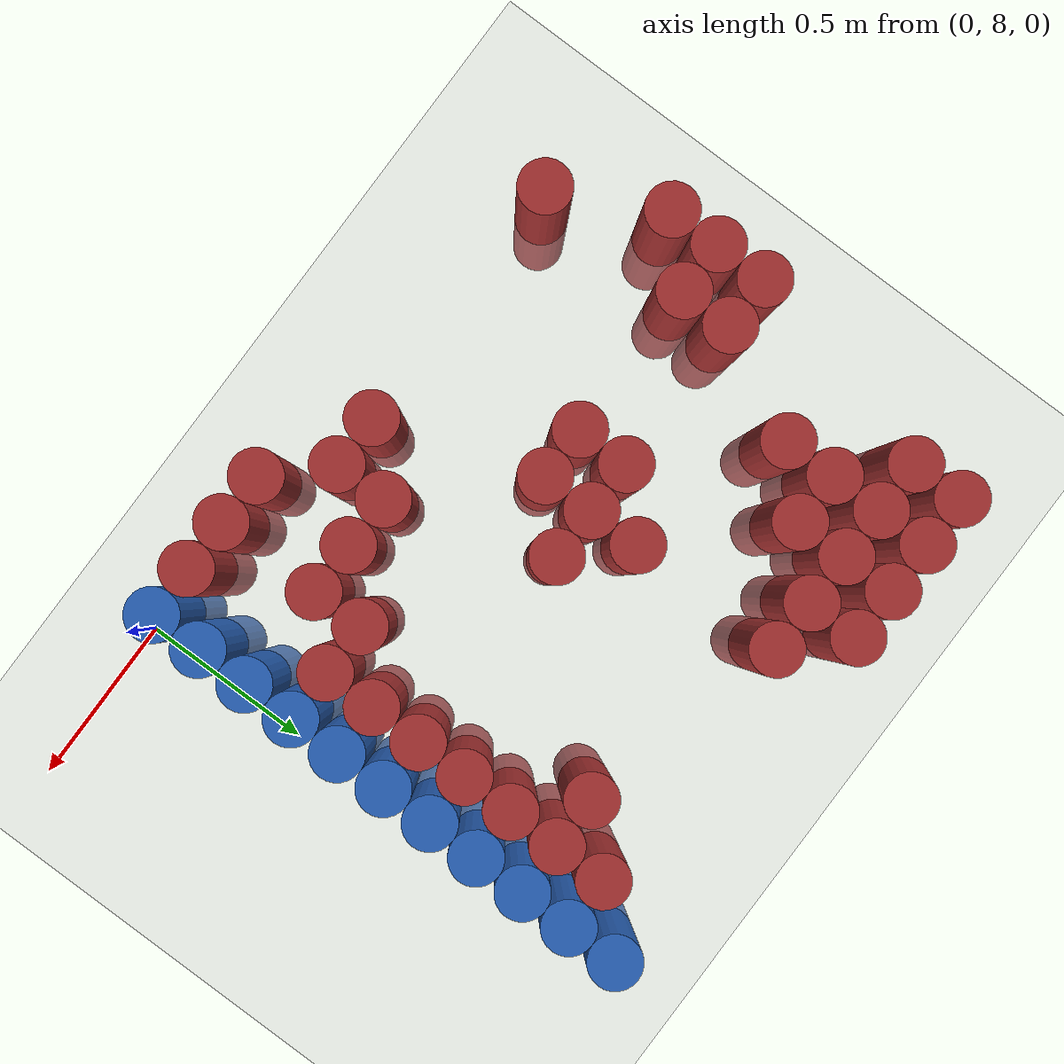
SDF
<sdf version="1.6">
 <world name="default">
  <model name="ground_plane">
   <static>1</static>
   <link name="link">
    <collision name="collision">
     <geometry><plane><normal>0 0 1</normal><size>100 100</size></plane></geometry>
     <surface><friction><ode><mu>100</mu><mu2>50</mu2></ode></friction></surface>
    </collision>
    <visual name="visual">
     <cast_shadows>0</cast_shadows>
     <geometry><plane><normal>0 0 1</normal><size>100 100</size></plane></geometry>
     <material>
      <script><uri>file://media/materials/scripts/gazebo.material</uri><name>Gazebo/Grey</name></script>
     </material>
    </visual>
   </link>
  </model>
  <model name="unit_cylinder_233">
   <static>1</static>
   <pose>-1.725000 8.475000 0.000000 0.000000 0.000000 0.000000</pose>
   <link name="link">
    <inertial>
     <mass>1</mass>
     <inertia><ixx>0.145833</ixx><ixy>0</ixy><ixz>0</ixz><iyy>0.145833</iyy><iyz>0</iyz><izz>0.125</izz></inertia>
    </inertial>
    <collision name="collision">
     <geometry><cylinder><radius>0.075000</radius><length>1</length></cylinder></geometry>
    </collision>
    <visual name="visual">
     <geometry><cylinder><radius>0.075000</radius><length>1</length></cylinder></geometry>
     <material>
      <ambient>0.648000 0.192000 0.192000 1</ambient>
      <diffuse>0.648000 0.192000 0.192000 1</diffuse>
     </material>
     <material>
      <script><name>Gazebo/Grey</name><uri>file://media/materials/scripts/gazebo.material</uri></script>
     </material>
    </visual>
   </link>
  </model>
  <model name="unit_cylinder_234">
   <static>1</static>
   <pose>-1.725000 8.625000 0.000000 0.000000 0.000000 0.000000</pose>
   <link name="link">
    <inertial>
     <mass>1</mass>
     <inertia><ixx>0.145833</ixx><ixy>0</ixy><ixz>0</ixz><iyy>0.145833</iyy><iyz>0</iyz><izz>0.125</izz></inertia>
    </inertial>
    <collision name="collision">
     <geometry><cylinder><radius>0.075000</radius><length>1</length></cylinder></geometry>
    </collision>
    <visual name="visual">
     <geometry><cylinder><radius>0.075000</radius><length>1</length></cylinder></geometry>
     <material>
      <ambient>0.648000 0.192000 0.192000 1</ambient>
      <diffuse>0.648000 0.192000 0.192000 1</diffuse>
     </material>
     <material>
      <script><name>Gazebo/Grey</name><uri>file://media/materials/scripts/gazebo.material</uri></script>
     </material>
    </visual>
   </link>
  </model>
  <model name="unit_cylinder_235">
   <static>1</static>
   <pose>-1.725000 8.775000 0.000000 0.000000 0.000000 0.000000</pose>
   <link name="link">
    <inertial>
     <mass>1</mass>
     <inertia><ixx>0.145833</ixx><ixy>0</ixy><ixz>0</ixz><iyy>0.145833</iyy><iyz>0</iyz><izz>0.125</izz></inertia>
    </inertial>
    <collision name="collision">
     <geometry><cylinder><radius>0.075000</radius><length>1</length></cylinder></geometry>
    </collision>
    <visual name="visual">
     <geometry><cylinder><radius>0.075000</radius><length>1</length></cylinder></geometry>
     <material>
      <ambient>0.648000 0.192000 0.192000 1</ambient>
      <diffuse>0.648000 0.192000 0.192000 1</diffuse>
     </material>
     <material>
      <script><name>Gazebo/Grey</name><uri>file://media/materials/scripts/gazebo.material</uri></script>
     </material>
    </visual>
   </link>
  </model>
  <model name="unit_cylinder_237">
   <static>1</static>
   <pose>-1.575000 8.175000 0.000000 0.000000 0.000000 0.000000</pose>
   <link name="link">
    <inertial>
     <mass>1</mass>
     <inertia><ixx>0.145833</ixx><ixy>0</ixy><ixz>0</ixz><iyy>0.145833</iyy><iyz>0</iyz><izz>0.125</izz></inertia>
    </inertial>
    <collision name="collision">
     <geometry><cylinder><radius>0.075000</radius><length>1</length></cylinder></geometry>
    </collision>
    <visual name="visual">
     <geometry><cylinder><radius>0.075000</radius><length>1</length></cylinder></geometry>
     <material>
      <ambient>0.648000 0.192000 0.192000 1</ambient>
      <diffuse>0.648000 0.192000 0.192000 1</diffuse>
     </material>
     <material>
      <script><name>Gazebo/Grey</name><uri>file://media/materials/scripts/gazebo.material</uri></script>
     </material>
    </visual>
   </link>
  </model>
  <model name="unit_cylinder_238">
   <static>1</static>
   <pose>-1.575000 8.625000 0.000000 0.000000 0.000000 0.000000</pose>
   <link name="link">
    <inertial>
     <mass>1</mass>
     <inertia><ixx>0.145833</ixx><ixy>0</ixy><ixz>0</ixz><iyy>0.145833</iyy><iyz>0</iyz><izz>0.125</izz></inertia>
    </inertial>
    <collision name="collision">
     <geometry><cylinder><radius>0.075000</radius><length>1</length></cylinder></geometry>
    </collision>
    <visual name="visual">
     <geometry><cylinder><radius>0.075000</radius><length>1</length></cylinder></geometry>
     <material>
      <ambient>0.648000 0.192000 0.192000 1</ambient>
      <diffuse>0.648000 0.192000 0.192000 1</diffuse>
     </material>
     <material>
      <script><name>Gazebo/Grey</name><uri>file://media/materials/scripts/gazebo.material</uri></script>
     </material>
    </visual>
   </link>
  </model>
  <model name="unit_cylinder_239">
   <static>1</static>
   <pose>-1.575000 8.775000 0.000000 0.000000 0.000000 0.000000</pose>
   <link name="link">
    <inertial>
     <mass>1</mass>
     <inertia><ixx>0.145833</ixx><ixy>0</ixy><ixz>0</ixz><iyy>0.145833</iyy><iyz>0</iyz><izz>0.125</izz></inertia>
    </inertial>
    <collision name="collision">
     <geometry><cylinder><radius>0.075000</radius><length>1</length></cylinder></geometry>
    </collision>
    <visual name="visual">
     <geometry><cylinder><radius>0.075000</radius><length>1</length></cylinder></geometry>
     <material>
      <ambient>0.648000 0.192000 0.192000 1</ambient>
      <diffuse>0.648000 0.192000 0.192000 1</diffuse>
     </material>
     <material>
      <script><name>Gazebo/Grey</name><uri>file://media/materials/scripts/gazebo.material</uri></script>
     </material>
    </visual>
   </link>
  </model>
  <model name="unit_cylinder_240">
   <static>1</static>
   <pose>-1.575000 9.375000 0.000000 0.000000 0.000000 0.000000</pose>
   <link name="link">
    <inertial>
     <mass>1</mass>
     <inertia><ixx>0.145833</ixx><ixy>0</ixy><ixz>0</ixz><iyy>0.145833</iyy><iyz>0</iyz><izz>0.125</izz></inertia>
    </inertial>
    <collision name="collision">
     <geometry><cylinder><radius>0.075000</radius><length>1</length></cylinder></geometry>
    </collision>
    <visual name="visual">
     <geometry><cylinder><radius>0.075000</radius><length>1</length></cylinder></geometry>
     <material>
      <ambient>0.648000 0.192000 0.192000 1</ambient>
      <diffuse>0.648000 0.192000 0.192000 1</diffuse>
     </material>
     <material>
      <script><name>Gazebo/Grey</name><uri>file://media/materials/scripts/gazebo.material</uri></script>
     </material>
    </visual>
   </link>
  </model>
  <model name="unit_cylinder_241">
   <static>1</static>
   <pose>-1.575000 9.525000 0.000000 0.000000 0.000000 0.000000</pose>
   <link name="link">
    <inertial>
     <mass>1</mass>
     <inertia><ixx>0.145833</ixx><ixy>0</ixy><ixz>0</ixz><iyy>0.145833</iyy><iyz>0</iyz><izz>0.125</izz></inertia>
    </inertial>
    <collision name="collision">
     <geometry><cylinder><radius>0.075000</radius><length>1</length></cylinder></geometry>
    </collision>
    <visual name="visual">
     <geometry><cylinder><radius>0.075000</radius><length>1</length></cylinder></geometry>
     <material>
      <ambient>0.648000 0.192000 0.192000 1</ambient>
      <diffuse>0.648000 0.192000 0.192000 1</diffuse>
     </material>
     <material>
      <script><name>Gazebo/Grey</name><uri>file://media/materials/scripts/gazebo.material</uri></script>
     </material>
    </visual>
   </link>
  </model>
  <model name="unit_cylinder_242">
   <static>1</static>
   <pose>-1.425000 9.075000 0.000000 0.000000 0.000000 0.000000</pose>
   <link name="link">
    <inertial>
     <mass>1</mass>
     <inertia><ixx>0.145833</ixx><ixy>0</ixy><ixz>0</ixz><iyy>0.145833</iyy><iyz>0</iyz><izz>0.125</izz></inertia>
    </inertial>
    <collision name="collision">
     <geometry><cylinder><radius>0.075000</radius><length>1</length></cylinder></geometry>
    </collision>
    <visual name="visual">
     <geometry><cylinder><radius>0.075000</radius><length>1</length></cylinder></geometry>
     <material>
      <ambient>0.648000 0.192000 0.192000 1</ambient>
      <diffuse>0.648000 0.192000 0.192000 1</diffuse>
     </material>
     <material>
      <script><name>Gazebo/Grey</name><uri>file://media/materials/scripts/gazebo.material</uri></script>
     </material>
    </visual>
   </link>
  </model>
  <model name="unit_cylinder_243">
   <static>1</static>
   <pose>-1.425000 9.225000 0.000000 0.000000 0.000000 0.000000</pose>
   <link name="link">
    <inertial>
     <mass>1</mass>
     <inertia><ixx>0.145833</ixx><ixy>0</ixy><ixz>0</ixz><iyy>0.145833</iyy><iyz>0</iyz><izz>0.125</izz></inertia>
    </inertial>
    <collision name="collision">
     <geometry><cylinder><radius>0.075000</radius><length>1</length></cylinder></geometry>
    </collision>
    <visual name="visual">
     <geometry><cylinder><radius>0.075000</radius><length>1</length></cylinder></geometry>
     <material>
      <ambient>0.648000 0.192000 0.192000 1</ambient>
      <diffuse>0.648000 0.192000 0.192000 1</diffuse>
     </material>
     <material>
      <script><name>Gazebo/Grey</name><uri>file://media/materials/scripts/gazebo.material</uri></script>
     </material>
    </visual>
   </link>
  </model>
  <model name="unit_cylinder_244">
   <static>1</static>
   <pose>-1.425000 9.375000 0.000000 0.000000 0.000000 0.000000</pose>
   <link name="link">
    <inertial>
     <mass>1</mass>
     <inertia><ixx>0.145833</ixx><ixy>0</ixy><ixz>0</ixz><iyy>0.145833</iyy><iyz>0</iyz><izz>0.125</izz></inertia>
    </inertial>
    <collision name="collision">
     <geometry><cylinder><radius>0.075000</radius><length>1</length></cylinder></geometry>
    </collision>
    <visual name="visual">
     <geometry><cylinder><radius>0.075000</radius><length>1</length></cylinder></geometry>
     <material>
      <ambient>0.648000 0.192000 0.192000 1</ambient>
      <diffuse>0.648000 0.192000 0.192000 1</diffuse>
     </material>
     <material>
      <script><name>Gazebo/Grey</name><uri>file://media/materials/scripts/gazebo.material</uri></script>
     </material>
    </visual>
   </link>
  </model>
  <model name="unit_cylinder_245">
   <static>1</static>
   <pose>-1.425000 9.525000 0.000000 0.000000 0.000000 0.000000</pose>
   <link name="link">
    <inertial>
     <mass>1</mass>
     <inertia><ixx>0.145833</ixx><ixy>0</ixy><ixz>0</ixz><iyy>0.145833</iyy><iyz>0</iyz><izz>0.125</izz></inertia>
    </inertial>
    <collision name="collision">
     <geometry><cylinder><radius>0.075000</radius><length>1</length></cylinder></geometry>
    </collision>
    <visual name="visual">
     <geometry><cylinder><radius>0.075000</radius><length>1</length></cylinder></geometry>
     <material>
      <ambient>0.648000 0.192000 0.192000 1</ambient>
      <diffuse>0.648000 0.192000 0.192000 1</diffuse>
     </material>
     <material>
      <script><name>Gazebo/Grey</name><uri>file://media/materials/scripts/gazebo.material</uri></script>
     </material>
    </visual>
   </link>
  </model>
  <model name="unit_cylinder_247">
   <static>1</static>
   <pose>-1.275000 9.225000 0.000000 0.000000 0.000000 0.000000</pose>
   <link name="link">
    <inertial>
     <mass>1</mass>
     <inertia><ixx>0.145833</ixx><ixy>0</ixy><ixz>0</ixz><iyy>0.145833</iyy><iyz>0</iyz><izz>0.125</izz></inertia>
    </inertial>
    <collision name="collision">
     <geometry><cylinder><radius>0.075000</radius><length>1</length></cylinder></geometry>
    </collision>
    <visual name="visual">
     <geometry><cylinder><radius>0.075000</radius><length>1</length></cylinder></geometry>
     <material>
      <ambient>0.648000 0.192000 0.192000 1</ambient>
      <diffuse>0.648000 0.192000 0.192000 1</diffuse>
     </material>
     <material>
      <script><name>Gazebo/Grey</name><uri>file://media/materials/scripts/gazebo.material</uri></script>
     </material>
    </visual>
   </link>
  </model>
  <model name="unit_cylinder_248">
   <static>1</static>
   <pose>-1.275000 9.375000 0.000000 0.000000 0.000000 0.000000</pose>
   <link name="link">
    <inertial>
     <mass>1</mass>
     <inertia><ixx>0.145833</ixx><ixy>0</ixy><ixz>0</ixz><iyy>0.145833</iyy><iyz>0</iyz><izz>0.125</izz></inertia>
    </inertial>
    <collision name="collision">
     <geometry><cylinder><radius>0.075000</radius><length>1</length></cylinder></geometry>
    </collision>
    <visual name="visual">
     <geometry><cylinder><radius>0.075000</radius><length>1</length></cylinder></geometry>
     <material>
      <ambient>0.648000 0.192000 0.192000 1</ambient>
      <diffuse>0.648000 0.192000 0.192000 1</diffuse>
     </material>
     <material>
      <script><name>Gazebo/Grey</name><uri>file://media/materials/scripts/gazebo.material</uri></script>
     </material>
    </visual>
   </link>
  </model>
  <model name="unit_cylinder_249">
   <static>1</static>
   <pose>-1.275000 9.525000 0.000000 0.000000 0.000000 0.000000</pose>
   <link name="link">
    <inertial>
     <mass>1</mass>
     <inertia><ixx>0.145833</ixx><ixy>0</ixy><ixz>0</ixz><iyy>0.145833</iyy><iyz>0</iyz><izz>0.125</izz></inertia>
    </inertial>
    <collision name="collision">
     <geometry><cylinder><radius>0.075000</radius><length>1</length></cylinder></geometry>
    </collision>
    <visual name="visual">
     <geometry><cylinder><radius>0.075000</radius><length>1</length></cylinder></geometry>
     <material>
      <ambient>0.648000 0.192000 0.192000 1</ambient>
      <diffuse>0.648000 0.192000 0.192000 1</diffuse>
     </material>
     <material>
      <script><name>Gazebo/Grey</name><uri>file://media/materials/scripts/gazebo.material</uri></script>
     </material>
    </visual>
   </link>
  </model>
  <model name="unit_cylinder_258">
   <static>1</static>
   <pose>-1.125000 8.625000 0.000000 0.000000 0.000000 0.000000</pose>
   <link name="link">
    <inertial>
     <mass>1</mass>
     <inertia><ixx>0.145833</ixx><ixy>0</ixy><ixz>0</ixz><iyy>0.145833</iyy><iyz>0</iyz><izz>0.125</izz></inertia>
    </inertial>
    <collision name="collision">
     <geometry><cylinder><radius>0.075000</radius><length>1</length></cylinder></geometry>
    </collision>
    <visual name="visual">
     <geometry><cylinder><radius>0.075000</radius><length>1</length></cylinder></geometry>
     <material>
      <ambient>0.648000 0.192000 0.192000 1</ambient>
      <diffuse>0.648000 0.192000 0.192000 1</diffuse>
     </material>
     <material>
      <script><name>Gazebo/Grey</name><uri>file://media/materials/scripts/gazebo.material</uri></script>
     </material>
    </visual>
   </link>
  </model>
  <model name="unit_cylinder_259">
   <static>1</static>
   <pose>-1.125000 8.775000 0.000000 0.000000 0.000000 0.000000</pose>
   <link name="link">
    <inertial>
     <mass>1</mass>
     <inertia><ixx>0.145833</ixx><ixy>0</ixy><ixz>0</ixz><iyy>0.145833</iyy><iyz>0</iyz><izz>0.125</izz></inertia>
    </inertial>
    <collision name="collision">
     <geometry><cylinder><radius>0.075000</radius><length>1</length></cylinder></geometry>
    </collision>
    <visual name="visual">
     <geometry><cylinder><radius>0.075000</radius><length>1</length></cylinder></geometry>
     <material>
      <ambient>0.648000 0.192000 0.192000 1</ambient>
      <diffuse>0.648000 0.192000 0.192000 1</diffuse>
     </material>
     <material>
      <script><name>Gazebo/Grey</name><uri>file://media/materials/scripts/gazebo.material</uri></script>
     </material>
    </visual>
   </link>
  </model>
  <model name="unit_cylinder_260">
   <static>1</static>
   <pose>-1.125000 9.375000 0.000000 0.000000 0.000000 0.000000</pose>
   <link name="link">
    <inertial>
     <mass>1</mass>
     <inertia><ixx>0.145833</ixx><ixy>0</ixy><ixz>0</ixz><iyy>0.145833</iyy><iyz>0</iyz><izz>0.125</izz></inertia>
    </inertial>
    <collision name="collision">
     <geometry><cylinder><radius>0.075000</radius><length>1</length></cylinder></geometry>
    </collision>
    <visual name="visual">
     <geometry><cylinder><radius>0.075000</radius><length>1</length></cylinder></geometry>
     <material>
      <ambient>0.648000 0.192000 0.192000 1</ambient>
      <diffuse>0.648000 0.192000 0.192000 1</diffuse>
     </material>
     <material>
      <script><name>Gazebo/Grey</name><uri>file://media/materials/scripts/gazebo.material</uri></script>
     </material>
    </visual>
   </link>
  </model>
  <model name="unit_cylinder_261">
   <static>1</static>
   <pose>-1.125000 9.525000 0.000000 0.000000 0.000000 0.000000</pose>
   <link name="link">
    <inertial>
     <mass>1</mass>
     <inertia><ixx>0.145833</ixx><ixy>0</ixy><ixz>0</ixz><iyy>0.145833</iyy><iyz>0</iyz><izz>0.125</izz></inertia>
    </inertial>
    <collision name="collision">
     <geometry><cylinder><radius>0.075000</radius><length>1</length></cylinder></geometry>
    </collision>
    <visual name="visual">
     <geometry><cylinder><radius>0.075000</radius><length>1</length></cylinder></geometry>
     <material>
      <ambient>0.648000 0.192000 0.192000 1</ambient>
      <diffuse>0.648000 0.192000 0.192000 1</diffuse>
     </material>
     <material>
      <script><name>Gazebo/Grey</name><uri>file://media/materials/scripts/gazebo.material</uri></script>
     </material>
    </visual>
   </link>
  </model>
  <model name="unit_cylinder_271">
   <static>1</static>
   <pose>-0.975000 8.625000 0.000000 0.000000 0.000000 0.000000</pose>
   <link name="link">
    <inertial>
     <mass>1</mass>
     <inertia><ixx>0.145833</ixx><ixy>0</ixy><ixz>0</ixz><iyy>0.145833</iyy><iyz>0</iyz><izz>0.125</izz></inertia>
    </inertial>
    <collision name="collision">
     <geometry><cylinder><radius>0.075000</radius><length>1</length></cylinder></geometry>
    </collision>
    <visual name="visual">
     <geometry><cylinder><radius>0.075000</radius><length>1</length></cylinder></geometry>
     <material>
      <ambient>0.648000 0.192000 0.192000 1</ambient>
      <diffuse>0.648000 0.192000 0.192000 1</diffuse>
     </material>
     <material>
      <script><name>Gazebo/Grey</name><uri>file://media/materials/scripts/gazebo.material</uri></script>
     </material>
    </visual>
   </link>
  </model>
  <model name="unit_cylinder_272">
   <static>1</static>
   <pose>-0.975000 8.775000 0.000000 0.000000 0.000000 0.000000</pose>
   <link name="link">
    <inertial>
     <mass>1</mass>
     <inertia><ixx>0.145833</ixx><ixy>0</ixy><ixz>0</ixz><iyy>0.145833</iyy><iyz>0</iyz><izz>0.125</izz></inertia>
    </inertial>
    <collision name="collision">
     <geometry><cylinder><radius>0.075000</radius><length>1</length></cylinder></geometry>
    </collision>
    <visual name="visual">
     <geometry><cylinder><radius>0.075000</radius><length>1</length></cylinder></geometry>
     <material>
      <ambient>0.648000 0.192000 0.192000 1</ambient>
      <diffuse>0.648000 0.192000 0.192000 1</diffuse>
     </material>
     <material>
      <script><name>Gazebo/Grey</name><uri>file://media/materials/scripts/gazebo.material</uri></script>
     </material>
    </visual>
   </link>
  </model>
  <model name="unit_cylinder_273">
   <static>1</static>
   <pose>-0.975000 8.925000 0.000000 0.000000 0.000000 0.000000</pose>
   <link name="link">
    <inertial>
     <mass>1</mass>
     <inertia><ixx>0.145833</ixx><ixy>0</ixy><ixz>0</ixz><iyy>0.145833</iyy><iyz>0</iyz><izz>0.125</izz></inertia>
    </inertial>
    <collision name="collision">
     <geometry><cylinder><radius>0.075000</radius><length>1</length></cylinder></geometry>
    </collision>
    <visual name="visual">
     <geometry><cylinder><radius>0.075000</radius><length>1</length></cylinder></geometry>
     <material>
      <ambient>0.648000 0.192000 0.192000 1</ambient>
      <diffuse>0.648000 0.192000 0.192000 1</diffuse>
     </material>
     <material>
      <script><name>Gazebo/Grey</name><uri>file://media/materials/scripts/gazebo.material</uri></script>
     </material>
    </visual>
   </link>
  </model>
  <model name="unit_cylinder_274">
   <static>1</static>
   <pose>-0.975000 9.375000 0.000000 0.000000 0.000000 0.000000</pose>
   <link name="link">
    <inertial>
     <mass>1</mass>
     <inertia><ixx>0.145833</ixx><ixy>0</ixy><ixz>0</ixz><iyy>0.145833</iyy><iyz>0</iyz><izz>0.125</izz></inertia>
    </inertial>
    <collision name="collision">
     <geometry><cylinder><radius>0.075000</radius><length>1</length></cylinder></geometry>
    </collision>
    <visual name="visual">
     <geometry><cylinder><radius>0.075000</radius><length>1</length></cylinder></geometry>
     <material>
      <ambient>0.648000 0.192000 0.192000 1</ambient>
      <diffuse>0.648000 0.192000 0.192000 1</diffuse>
     </material>
     <material>
      <script><name>Gazebo/Grey</name><uri>file://media/materials/scripts/gazebo.material</uri></script>
     </material>
    </visual>
   </link>
  </model>
  <model name="unit_cylinder_284">
   <static>1</static>
   <pose>-0.825000 8.175000 0.000000 0.000000 0.000000 0.000000</pose>
   <link name="link">
    <inertial>
     <mass>1</mass>
     <inertia><ixx>0.145833</ixx><ixy>0</ixy><ixz>0</ixz><iyy>0.145833</iyy><iyz>0</iyz><izz>0.125</izz></inertia>
    </inertial>
    <collision name="collision">
     <geometry><cylinder><radius>0.075000</radius><length>1</length></cylinder></geometry>
    </collision>
    <visual name="visual">
     <geometry><cylinder><radius>0.075000</radius><length>1</length></cylinder></geometry>
     <material>
      <ambient>0.648000 0.192000 0.192000 1</ambient>
      <diffuse>0.648000 0.192000 0.192000 1</diffuse>
     </material>
     <material>
      <script><name>Gazebo/Grey</name><uri>file://media/materials/scripts/gazebo.material</uri></script>
     </material>
    </visual>
   </link>
  </model>
  <model name="unit_cylinder_285">
   <static>1</static>
   <pose>-0.825000 8.775000 0.000000 0.000000 0.000000 0.000000</pose>
   <link name="link">
    <inertial>
     <mass>1</mass>
     <inertia><ixx>0.145833</ixx><ixy>0</ixy><ixz>0</ixz><iyy>0.145833</iyy><iyz>0</iyz><izz>0.125</izz></inertia>
    </inertial>
    <collision name="collision">
     <geometry><cylinder><radius>0.075000</radius><length>1</length></cylinder></geometry>
    </collision>
    <visual name="visual">
     <geometry><cylinder><radius>0.075000</radius><length>1</length></cylinder></geometry>
     <material>
      <ambient>0.648000 0.192000 0.192000 1</ambient>
      <diffuse>0.648000 0.192000 0.192000 1</diffuse>
     </material>
     <material>
      <script><name>Gazebo/Grey</name><uri>file://media/materials/scripts/gazebo.material</uri></script>
     </material>
    </visual>
   </link>
  </model>
  <model name="unit_cylinder_294">
   <static>1</static>
   <pose>-0.675000 8.175000 0.000000 0.000000 0.000000 0.000000</pose>
   <link name="link">
    <inertial>
     <mass>1</mass>
     <inertia><ixx>0.145833</ixx><ixy>0</ixy><ixz>0</ixz><iyy>0.145833</iyy><iyz>0</iyz><izz>0.125</izz></inertia>
    </inertial>
    <collision name="collision">
     <geometry><cylinder><radius>0.075000</radius><length>1</length></cylinder></geometry>
    </collision>
    <visual name="visual">
     <geometry><cylinder><radius>0.075000</radius><length>1</length></cylinder></geometry>
     <material>
      <ambient>0.648000 0.192000 0.192000 1</ambient>
      <diffuse>0.648000 0.192000 0.192000 1</diffuse>
     </material>
     <material>
      <script><name>Gazebo/Grey</name><uri>file://media/materials/scripts/gazebo.material</uri></script>
     </material>
    </visual>
   </link>
  </model>
  <model name="unit_cylinder_295">
   <static>1</static>
   <pose>-0.675000 8.325000 0.000000 0.000000 0.000000 0.000000</pose>
   <link name="link">
    <inertial>
     <mass>1</mass>
     <inertia><ixx>0.145833</ixx><ixy>0</ixy><ixz>0</ixz><iyy>0.145833</iyy><iyz>0</iyz><izz>0.125</izz></inertia>
    </inertial>
    <collision name="collision">
     <geometry><cylinder><radius>0.075000</radius><length>1</length></cylinder></geometry>
    </collision>
    <visual name="visual">
     <geometry><cylinder><radius>0.075000</radius><length>1</length></cylinder></geometry>
     <material>
      <ambient>0.648000 0.192000 0.192000 1</ambient>
      <diffuse>0.648000 0.192000 0.192000 1</diffuse>
     </material>
     <material>
      <script><name>Gazebo/Grey</name><uri>file://media/materials/scripts/gazebo.material</uri></script>
     </material>
    </visual>
   </link>
  </model>
  <model name="unit_cylinder_300">
   <static>1</static>
   <pose>-0.525000 8.025000 0.000000 0.000000 0.000000 0.000000</pose>
   <link name="link">
    <inertial>
     <mass>1</mass>
     <inertia><ixx>0.145833</ixx><ixy>0</ixy><ixz>0</ixz><iyy>0.145833</iyy><iyz>0</iyz><izz>0.125</izz></inertia>
    </inertial>
    <collision name="collision">
     <geometry><cylinder><radius>0.075000</radius><length>1</length></cylinder></geometry>
    </collision>
    <visual name="visual">
     <geometry><cylinder><radius>0.075000</radius><length>1</length></cylinder></geometry>
     <material>
      <ambient>0.648000 0.192000 0.192000 1</ambient>
      <diffuse>0.648000 0.192000 0.192000 1</diffuse>
     </material>
     <material>
      <script><name>Gazebo/Grey</name><uri>file://media/materials/scripts/gazebo.material</uri></script>
     </material>
    </visual>
   </link>
  </model>
  <model name="unit_cylinder_301">
   <static>1</static>
   <pose>-0.525000 8.325000 0.000000 0.000000 0.000000 0.000000</pose>
   <link name="link">
    <inertial>
     <mass>1</mass>
     <inertia><ixx>0.145833</ixx><ixy>0</ixy><ixz>0</ixz><iyy>0.145833</iyy><iyz>0</iyz><izz>0.125</izz></inertia>
    </inertial>
    <collision name="collision">
     <geometry><cylinder><radius>0.075000</radius><length>1</length></cylinder></geometry>
    </collision>
    <visual name="visual">
     <geometry><cylinder><radius>0.075000</radius><length>1</length></cylinder></geometry>
     <material>
      <ambient>0.648000 0.192000 0.192000 1</ambient>
      <diffuse>0.648000 0.192000 0.192000 1</diffuse>
     </material>
     <material>
      <script><name>Gazebo/Grey</name><uri>file://media/materials/scripts/gazebo.material</uri></script>
     </material>
    </visual>
   </link>
  </model>
  <model name="unit_cylinder_309">
   <static>1</static>
   <pose>-0.375000 8.025000 0.000000 0.000000 0.000000 0.000000</pose>
   <link name="link">
    <inertial>
     <mass>1</mass>
     <inertia><ixx>0.145833</ixx><ixy>0</ixy><ixz>0</ixz><iyy>0.145833</iyy><iyz>0</iyz><izz>0.125</izz></inertia>
    </inertial>
    <collision name="collision">
     <geometry><cylinder><radius>0.075000</radius><length>1</length></cylinder></geometry>
    </collision>
    <visual name="visual">
     <geometry><cylinder><radius>0.075000</radius><length>1</length></cylinder></geometry>
     <material>
      <ambient>0.648000 0.192000 0.192000 1</ambient>
      <diffuse>0.648000 0.192000 0.192000 1</diffuse>
     </material>
     <material>
      <script><name>Gazebo/Grey</name><uri>file://media/materials/scripts/gazebo.material</uri></script>
     </material>
    </visual>
   </link>
  </model>
  <model name="unit_cylinder_310">
   <static>1</static>
   <pose>-0.375000 8.325000 0.000000 0.000000 0.000000 0.000000</pose>
   <link name="link">
    <inertial>
     <mass>1</mass>
     <inertia><ixx>0.145833</ixx><ixy>0</ixy><ixz>0</ixz><iyy>0.145833</iyy><iyz>0</iyz><izz>0.125</izz></inertia>
    </inertial>
    <collision name="collision">
     <geometry><cylinder><radius>0.075000</radius><length>1</length></cylinder></geometry>
    </collision>
    <visual name="visual">
     <geometry><cylinder><radius>0.075000</radius><length>1</length></cylinder></geometry>
     <material>
      <ambient>0.648000 0.192000 0.192000 1</ambient>
      <diffuse>0.648000 0.192000 0.192000 1</diffuse>
     </material>
     <material>
      <script><name>Gazebo/Grey</name><uri>file://media/materials/scripts/gazebo.material</uri></script>
     </material>
    </visual>
   </link>
  </model>
  <model name="unit_cylinder_311">
   <static>1</static>
   <pose>-0.375000 8.475000 0.000000 0.000000 0.000000 0.000000</pose>
   <link name="link">
    <inertial>
     <mass>1</mass>
     <inertia><ixx>0.145833</ixx><ixy>0</ixy><ixz>0</ixz><iyy>0.145833</iyy><iyz>0</iyz><izz>0.125</izz></inertia>
    </inertial>
    <collision name="collision">
     <geometry><cylinder><radius>0.075000</radius><length>1</length></cylinder></geometry>
    </collision>
    <visual name="visual">
     <geometry><cylinder><radius>0.075000</radius><length>1</length></cylinder></geometry>
     <material>
      <ambient>0.648000 0.192000 0.192000 1</ambient>
      <diffuse>0.648000 0.192000 0.192000 1</diffuse>
     </material>
     <material>
      <script><name>Gazebo/Grey</name><uri>file://media/materials/scripts/gazebo.material</uri></script>
     </material>
    </visual>
   </link>
  </model>
  <model name="unit_cylinder_312">
   <static>1</static>
   <pose>-0.375000 9.225000 0.000000 0.000000 0.000000 0.000000</pose>
   <link name="link">
    <inertial>
     <mass>1</mass>
     <inertia><ixx>0.145833</ixx><ixy>0</ixy><ixz>0</ixz><iyy>0.145833</iyy><iyz>0</iyz><izz>0.125</izz></inertia>
    </inertial>
    <collision name="collision">
     <geometry><cylinder><radius>0.075000</radius><length>1</length></cylinder></geometry>
    </collision>
    <visual name="visual">
     <geometry><cylinder><radius>0.075000</radius><length>1</length></cylinder></geometry>
     <material>
      <ambient>0.648000 0.192000 0.192000 1</ambient>
      <diffuse>0.648000 0.192000 0.192000 1</diffuse>
     </material>
     <material>
      <script><name>Gazebo/Grey</name><uri>file://media/materials/scripts/gazebo.material</uri></script>
     </material>
    </visual>
   </link>
  </model>
  <model name="unit_cylinder_324">
   <static>1</static>
   <pose>-0.225000 8.025000 0.000000 0.000000 0.000000 0.000000</pose>
   <link name="link">
    <inertial>
     <mass>1</mass>
     <inertia><ixx>0.145833</ixx><ixy>0</ixy><ixz>0</ixz><iyy>0.145833</iyy><iyz>0</iyz><izz>0.125</izz></inertia>
    </inertial>
    <collision name="collision">
     <geometry><cylinder><radius>0.075000</radius><length>1</length></cylinder></geometry>
    </collision>
    <visual name="visual">
     <geometry><cylinder><radius>0.075000</radius><length>1</length></cylinder></geometry>
     <material>
      <ambient>0.648000 0.192000 0.192000 1</ambient>
      <diffuse>0.648000 0.192000 0.192000 1</diffuse>
     </material>
     <material>
      <script><name>Gazebo/Grey</name><uri>file://media/materials/scripts/gazebo.material</uri></script>
     </material>
    </visual>
   </link>
  </model>
  <model name="unit_cylinder_325">
   <static>1</static>
   <pose>-0.225000 8.475000 0.000000 0.000000 0.000000 0.000000</pose>
   <link name="link">
    <inertial>
     <mass>1</mass>
     <inertia><ixx>0.145833</ixx><ixy>0</ixy><ixz>0</ixz><iyy>0.145833</iyy><iyz>0</iyz><izz>0.125</izz></inertia>
    </inertial>
    <collision name="collision">
     <geometry><cylinder><radius>0.075000</radius><length>1</length></cylinder></geometry>
    </collision>
    <visual name="visual">
     <geometry><cylinder><radius>0.075000</radius><length>1</length></cylinder></geometry>
     <material>
      <ambient>0.648000 0.192000 0.192000 1</ambient>
      <diffuse>0.648000 0.192000 0.192000 1</diffuse>
     </material>
     <material>
      <script><name>Gazebo/Grey</name><uri>file://media/materials/scripts/gazebo.material</uri></script>
     </material>
    </visual>
   </link>
  </model>
  <model name="unit_cylinder_326">
   <static>1</static>
   <pose>-0.225000 8.625000 0.000000 0.000000 0.000000 0.000000</pose>
   <link name="link">
    <inertial>
     <mass>1</mass>
     <inertia><ixx>0.145833</ixx><ixy>0</ixy><ixz>0</ixz><iyy>0.145833</iyy><iyz>0</iyz><izz>0.125</izz></inertia>
    </inertial>
    <collision name="collision">
     <geometry><cylinder><radius>0.075000</radius><length>1</length></cylinder></geometry>
    </collision>
    <visual name="visual">
     <geometry><cylinder><radius>0.075000</radius><length>1</length></cylinder></geometry>
     <material>
      <ambient>0.648000 0.192000 0.192000 1</ambient>
      <diffuse>0.648000 0.192000 0.192000 1</diffuse>
     </material>
     <material>
      <script><name>Gazebo/Grey</name><uri>file://media/materials/scripts/gazebo.material</uri></script>
     </material>
    </visual>
   </link>
  </model>
  <model name="unit_cylinder_327">
   <static>1</static>
   <pose>-0.225000 8.775000 0.000000 0.000000 0.000000 0.000000</pose>
   <link name="link">
    <inertial>
     <mass>1</mass>
     <inertia><ixx>0.145833</ixx><ixy>0</ixy><ixz>0</ixz><iyy>0.145833</iyy><iyz>0</iyz><izz>0.125</izz></inertia>
    </inertial>
    <collision name="collision">
     <geometry><cylinder><radius>0.075000</radius><length>1</length></cylinder></geometry>
    </collision>
    <visual name="visual">
     <geometry><cylinder><radius>0.075000</radius><length>1</length></cylinder></geometry>
     <material>
      <ambient>0.648000 0.192000 0.192000 1</ambient>
      <diffuse>0.648000 0.192000 0.192000 1</diffuse>
     </material>
     <material>
      <script><name>Gazebo/Grey</name><uri>file://media/materials/scripts/gazebo.material</uri></script>
     </material>
    </visual>
   </link>
  </model>
  <model name="unit_cylinder_328">
   <static>1</static>
   <pose>-0.225000 8.925000 0.000000 0.000000 0.000000 0.000000</pose>
   <link name="link">
    <inertial>
     <mass>1</mass>
     <inertia><ixx>0.145833</ixx><ixy>0</ixy><ixz>0</ixz><iyy>0.145833</iyy><iyz>0</iyz><izz>0.125</izz></inertia>
    </inertial>
    <collision name="collision">
     <geometry><cylinder><radius>0.075000</radius><length>1</length></cylinder></geometry>
    </collision>
    <visual name="visual">
     <geometry><cylinder><radius>0.075000</radius><length>1</length></cylinder></geometry>
     <material>
      <ambient>0.648000 0.192000 0.192000 1</ambient>
      <diffuse>0.648000 0.192000 0.192000 1</diffuse>
     </material>
     <material>
      <script><name>Gazebo/Grey</name><uri>file://media/materials/scripts/gazebo.material</uri></script>
     </material>
    </visual>
   </link>
  </model>
  <model name="unit_cylinder_329">
   <static>1</static>
   <pose>-0.225000 9.075000 0.000000 0.000000 0.000000 0.000000</pose>
   <link name="link">
    <inertial>
     <mass>1</mass>
     <inertia><ixx>0.145833</ixx><ixy>0</ixy><ixz>0</ixz><iyy>0.145833</iyy><iyz>0</iyz><izz>0.125</izz></inertia>
    </inertial>
    <collision name="collision">
     <geometry><cylinder><radius>0.075000</radius><length>1</length></cylinder></geometry>
    </collision>
    <visual name="visual">
     <geometry><cylinder><radius>0.075000</radius><length>1</length></cylinder></geometry>
     <material>
      <ambient>0.648000 0.192000 0.192000 1</ambient>
      <diffuse>0.648000 0.192000 0.192000 1</diffuse>
     </material>
     <material>
      <script><name>Gazebo/Grey</name><uri>file://media/materials/scripts/gazebo.material</uri></script>
     </material>
    </visual>
   </link>
  </model>
  <model name="unit_cylinder_330">
   <static>1</static>
   <pose>-0.225000 9.225000 0.000000 0.000000 0.000000 0.000000</pose>
   <link name="link">
    <inertial>
     <mass>1</mass>
     <inertia><ixx>0.145833</ixx><ixy>0</ixy><ixz>0</ixz><iyy>0.145833</iyy><iyz>0</iyz><izz>0.125</izz></inertia>
    </inertial>
    <collision name="collision">
     <geometry><cylinder><radius>0.075000</radius><length>1</length></cylinder></geometry>
    </collision>
    <visual name="visual">
     <geometry><cylinder><radius>0.075000</radius><length>1</length></cylinder></geometry>
     <material>
      <ambient>0.648000 0.192000 0.192000 1</ambient>
      <diffuse>0.648000 0.192000 0.192000 1</diffuse>
     </material>
     <material>
      <script><name>Gazebo/Grey</name><uri>file://media/materials/scripts/gazebo.material</uri></script>
     </material>
    </visual>
   </link>
  </model>
  <model name="unit_cylinder_331">
   <static>1</static>
   <pose>-0.225000 9.375000 0.000000 0.000000 0.000000 0.000000</pose>
   <link name="link">
    <inertial>
     <mass>1</mass>
     <inertia><ixx>0.145833</ixx><ixy>0</ixy><ixz>0</ixz><iyy>0.145833</iyy><iyz>0</iyz><izz>0.125</izz></inertia>
    </inertial>
    <collision name="collision">
     <geometry><cylinder><radius>0.075000</radius><length>1</length></cylinder></geometry>
    </collision>
    <visual name="visual">
     <geometry><cylinder><radius>0.075000</radius><length>1</length></cylinder></geometry>
     <material>
      <ambient>0.648000 0.192000 0.192000 1</ambient>
      <diffuse>0.648000 0.192000 0.192000 1</diffuse>
     </material>
     <material>
      <script><name>Gazebo/Grey</name><uri>file://media/materials/scripts/gazebo.material</uri></script>
     </material>
    </visual>
   </link>
  </model>
  <model name="unit_cylinder_351">
   <static>1</static>
   <pose>-0.075000 8.025000 0.000000 0.000000 0.000000 0.000000</pose>
   <link name="link">
    <inertial>
     <mass>1</mass>
     <inertia><ixx>0.145833</ixx><ixy>0</ixy><ixz>0</ixz><iyy>0.145833</iyy><iyz>0</iyz><izz>0.125</izz></inertia>
    </inertial>
    <collision name="collision">
     <geometry><cylinder><radius>0.075000</radius><length>1</length></cylinder></geometry>
    </collision>
    <visual name="visual">
     <geometry><cylinder><radius>0.075000</radius><length>1</length></cylinder></geometry>
     <material>
      <ambient>0.152000 0.379000 0.720000 1</ambient>
      <diffuse>0.152000 0.379000 0.720000 1</diffuse>
     </material>
     <material>
      <script><name>Gazebo/Grey</name><uri>file://media/materials/scripts/gazebo.material</uri></script>
     </material>
    </visual>
   </link>
  </model>
  <model name="unit_cylinder_352">
   <static>1</static>
   <pose>-0.075000 8.175000 0.000000 0.000000 0.000000 0.000000</pose>
   <link name="link">
    <inertial>
     <mass>1</mass>
     <inertia><ixx>0.145833</ixx><ixy>0</ixy><ixz>0</ixz><iyy>0.145833</iyy><iyz>0</iyz><izz>0.125</izz></inertia>
    </inertial>
    <collision name="collision">
     <geometry><cylinder><radius>0.075000</radius><length>1</length></cylinder></geometry>
    </collision>
    <visual name="visual">
     <geometry><cylinder><radius>0.075000</radius><length>1</length></cylinder></geometry>
     <material>
      <ambient>0.152000 0.379000 0.720000 1</ambient>
      <diffuse>0.152000 0.379000 0.720000 1</diffuse>
     </material>
     <material>
      <script><name>Gazebo/Grey</name><uri>file://media/materials/scripts/gazebo.material</uri></script>
     </material>
    </visual>
   </link>
  </model>
  <model name="unit_cylinder_353">
   <static>1</static>
   <pose>-0.075000 8.325000 0.000000 0.000000 0.000000 0.000000</pose>
   <link name="link">
    <inertial>
     <mass>1</mass>
     <inertia><ixx>0.145833</ixx><ixy>0</ixy><ixz>0</ixz><iyy>0.145833</iyy><iyz>0</iyz><izz>0.125</izz></inertia>
    </inertial>
    <collision name="collision">
     <geometry><cylinder><radius>0.075000</radius><length>1</length></cylinder></geometry>
    </collision>
    <visual name="visual">
     <geometry><cylinder><radius>0.075000</radius><length>1</length></cylinder></geometry>
     <material>
      <ambient>0.152000 0.379000 0.720000 1</ambient>
      <diffuse>0.152000 0.379000 0.720000 1</diffuse>
     </material>
     <material>
      <script><name>Gazebo/Grey</name><uri>file://media/materials/scripts/gazebo.material</uri></script>
     </material>
    </visual>
   </link>
  </model>
  <model name="unit_cylinder_354">
   <static>1</static>
   <pose>-0.075000 8.475000 0.000000 0.000000 0.000000 0.000000</pose>
   <link name="link">
    <inertial>
     <mass>1</mass>
     <inertia><ixx>0.145833</ixx><ixy>0</ixy><ixz>0</ixz><iyy>0.145833</iyy><iyz>0</iyz><izz>0.125</izz></inertia>
    </inertial>
    <collision name="collision">
     <geometry><cylinder><radius>0.075000</radius><length>1</length></cylinder></geometry>
    </collision>
    <visual name="visual">
     <geometry><cylinder><radius>0.075000</radius><length>1</length></cylinder></geometry>
     <material>
      <ambient>0.152000 0.379000 0.720000 1</ambient>
      <diffuse>0.152000 0.379000 0.720000 1</diffuse>
     </material>
     <material>
      <script><name>Gazebo/Grey</name><uri>file://media/materials/scripts/gazebo.material</uri></script>
     </material>
    </visual>
   </link>
  </model>
  <model name="unit_cylinder_355">
   <static>1</static>
   <pose>-0.075000 8.625000 0.000000 0.000000 0.000000 0.000000</pose>
   <link name="link">
    <inertial>
     <mass>1</mass>
     <inertia><ixx>0.145833</ixx><ixy>0</ixy><ixz>0</ixz><iyy>0.145833</iyy><iyz>0</iyz><izz>0.125</izz></inertia>
    </inertial>
    <collision name="collision">
     <geometry><cylinder><radius>0.075000</radius><length>1</length></cylinder></geometry>
    </collision>
    <visual name="visual">
     <geometry><cylinder><radius>0.075000</radius><length>1</length></cylinder></geometry>
     <material>
      <ambient>0.152000 0.379000 0.720000 1</ambient>
      <diffuse>0.152000 0.379000 0.720000 1</diffuse>
     </material>
     <material>
      <script><name>Gazebo/Grey</name><uri>file://media/materials/scripts/gazebo.material</uri></script>
     </material>
    </visual>
   </link>
  </model>
  <model name="unit_cylinder_356">
   <static>1</static>
   <pose>-0.075000 8.775000 0.000000 0.000000 0.000000 0.000000</pose>
   <link name="link">
    <inertial>
     <mass>1</mass>
     <inertia><ixx>0.145833</ixx><ixy>0</ixy><ixz>0</ixz><iyy>0.145833</iyy><iyz>0</iyz><izz>0.125</izz></inertia>
    </inertial>
    <collision name="collision">
     <geometry><cylinder><radius>0.075000</radius><length>1</length></cylinder></geometry>
    </collision>
    <visual name="visual">
     <geometry><cylinder><radius>0.075000</radius><length>1</length></cylinder></geometry>
     <material>
      <ambient>0.152000 0.379000 0.720000 1</ambient>
      <diffuse>0.152000 0.379000 0.720000 1</diffuse>
     </material>
     <material>
      <script><name>Gazebo/Grey</name><uri>file://media/materials/scripts/gazebo.material</uri></script>
     </material>
    </visual>
   </link>
  </model>
  <model name="unit_cylinder_357">
   <static>1</static>
   <pose>-0.075000 8.925000 0.000000 0.000000 0.000000 0.000000</pose>
   <link name="link">
    <inertial>
     <mass>1</mass>
     <inertia><ixx>0.145833</ixx><ixy>0</ixy><ixz>0</ixz><iyy>0.145833</iyy><iyz>0</iyz><izz>0.125</izz></inertia>
    </inertial>
    <collision name="collision">
     <geometry><cylinder><radius>0.075000</radius><length>1</length></cylinder></geometry>
    </collision>
    <visual name="visual">
     <geometry><cylinder><radius>0.075000</radius><length>1</length></cylinder></geometry>
     <material>
      <ambient>0.152000 0.379000 0.720000 1</ambient>
      <diffuse>0.152000 0.379000 0.720000 1</diffuse>
     </material>
     <material>
      <script><name>Gazebo/Grey</name><uri>file://media/materials/scripts/gazebo.material</uri></script>
     </material>
    </visual>
   </link>
  </model>
  <model name="unit_cylinder_358">
   <static>1</static>
   <pose>-0.075000 9.075000 0.000000 0.000000 0.000000 0.000000</pose>
   <link name="link">
    <inertial>
     <mass>1</mass>
     <inertia><ixx>0.145833</ixx><ixy>0</ixy><ixz>0</ixz><iyy>0.145833</iyy><iyz>0</iyz><izz>0.125</izz></inertia>
    </inertial>
    <collision name="collision">
     <geometry><cylinder><radius>0.075000</radius><length>1</length></cylinder></geometry>
    </collision>
    <visual name="visual">
     <geometry><cylinder><radius>0.075000</radius><length>1</length></cylinder></geometry>
     <material>
      <ambient>0.152000 0.379000 0.720000 1</ambient>
      <diffuse>0.152000 0.379000 0.720000 1</diffuse>
     </material>
     <material>
      <script><name>Gazebo/Grey</name><uri>file://media/materials/scripts/gazebo.material</uri></script>
     </material>
    </visual>
   </link>
  </model>
  <model name="unit_cylinder_359">
   <static>1</static>
   <pose>-0.075000 9.225000 0.000000 0.000000 0.000000 0.000000</pose>
   <link name="link">
    <inertial>
     <mass>1</mass>
     <inertia><ixx>0.145833</ixx><ixy>0</ixy><ixz>0</ixz><iyy>0.145833</iyy><iyz>0</iyz><izz>0.125</izz></inertia>
    </inertial>
    <collision name="collision">
     <geometry><cylinder><radius>0.075000</radius><length>1</length></cylinder></geometry>
    </collision>
    <visual name="visual">
     <geometry><cylinder><radius>0.075000</radius><length>1</length></cylinder></geometry>
     <material>
      <ambient>0.152000 0.379000 0.720000 1</ambient>
      <diffuse>0.152000 0.379000 0.720000 1</diffuse>
     </material>
     <material>
      <script><name>Gazebo/Grey</name><uri>file://media/materials/scripts/gazebo.material</uri></script>
     </material>
    </visual>
   </link>
  </model>
  <model name="unit_cylinder_360">
   <static>1</static>
   <pose>-0.075000 9.375000 0.000000 0.000000 0.000000 0.000000</pose>
   <link name="link">
    <inertial>
     <mass>1</mass>
     <inertia><ixx>0.145833</ixx><ixy>0</ixy><ixz>0</ixz><iyy>0.145833</iyy><iyz>0</iyz><izz>0.125</izz></inertia>
    </inertial>
    <collision name="collision">
     <geometry><cylinder><radius>0.075000</radius><length>1</length></cylinder></geometry>
    </collision>
    <visual name="visual">
     <geometry><cylinder><radius>0.075000</radius><length>1</length></cylinder></geometry>
     <material>
      <ambient>0.152000 0.379000 0.720000 1</ambient>
      <diffuse>0.152000 0.379000 0.720000 1</diffuse>
     </material>
     <material>
      <script><name>Gazebo/Grey</name><uri>file://media/materials/scripts/gazebo.material</uri></script>
     </material>
    </visual>
   </link>
  </model>
  <model name="unit_cylinder_361">
   <static>1</static>
   <pose>-0.075000 9.525000 0.000000 0.000000 0.000000 0.000000</pose>
   <link name="link">
    <inertial>
     <mass>1</mass>
     <inertia><ixx>0.145833</ixx><ixy>0</ixy><ixz>0</ixz><iyy>0.145833</iyy><iyz>0</iyz><izz>0.125</izz></inertia>
    </inertial>
    <collision name="collision">
     <geometry><cylinder><radius>0.075000</radius><length>1</length></cylinder></geometry>
    </collision>
    <visual name="visual">
     <geometry><cylinder><radius>0.075000</radius><length>1</length></cylinder></geometry>
     <material>
      <ambient>0.152000 0.379000 0.720000 1</ambient>
      <diffuse>0.152000 0.379000 0.720000 1</diffuse>
     </material>
     <material>
      <script><name>Gazebo/Grey</name><uri>file://media/materials/scripts/gazebo.material</uri></script>
     </material>
    </visual>
   </link>
  </model>
 </world>
</sdf>
